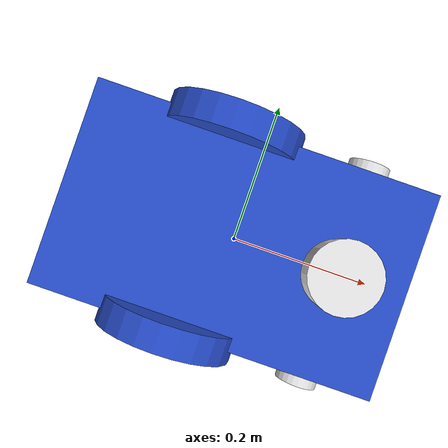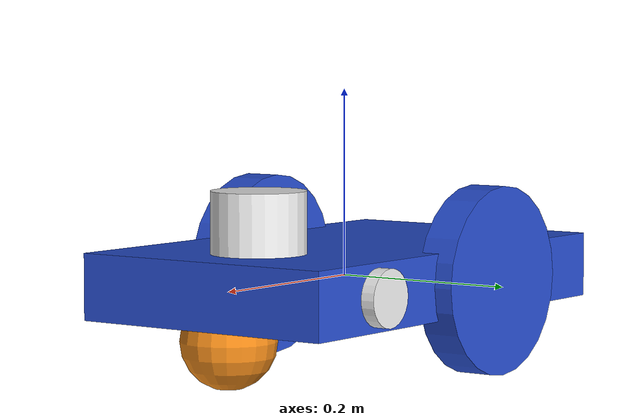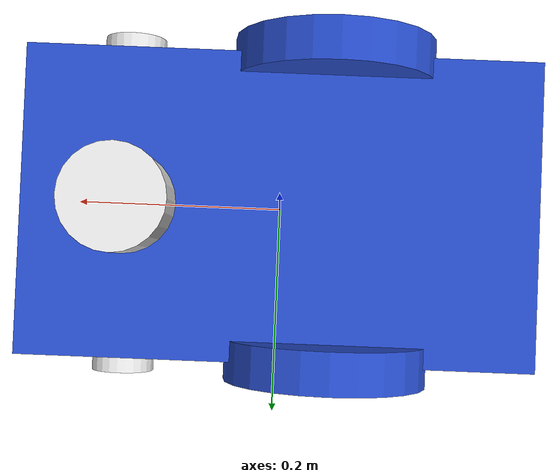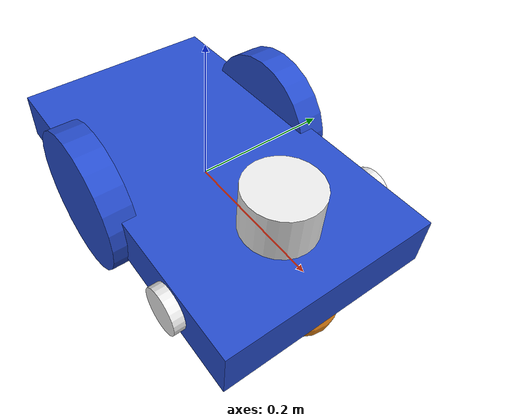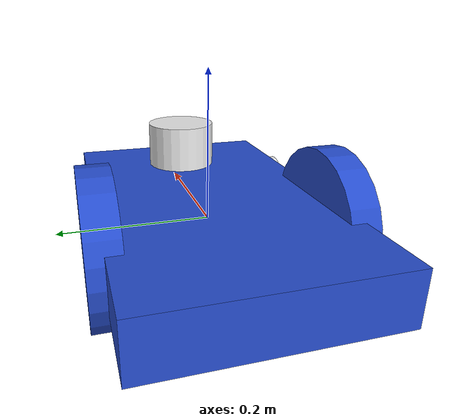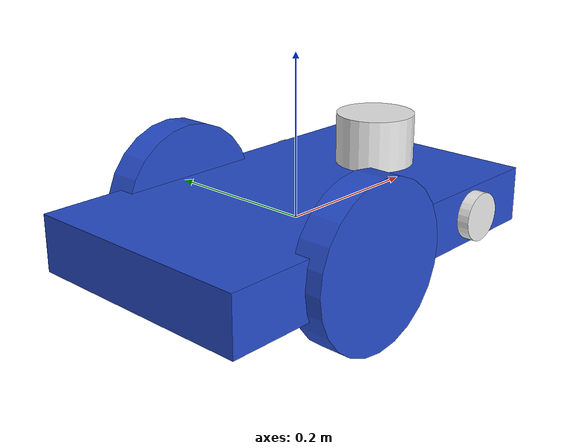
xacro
<?xml version="1.0" ?>
<robot name="m2wr" xmlns:xacro="http://www.ros.org/wiki/xacro">

  <xacro:include filename="$(find m2wr_description)/urdf/materials.xacro" />
  <xacro:include filename="$(find m2wr_description)/urdf/m2wr.gazebo" />
  <xacro:include filename="$(find m2wr_description)/urdf/macros.xacro" />

  <link name="link_chassis">
    <!-- pose and inertial -->
    <pose>0 0 0.1 0 0 0</pose>
    <inertial>
      <mass value="5"/>
      <origin rpy="0 0 0" xyz="0 0 0.1"/>
      <inertia ixx="0.0395416666667" ixy="0" ixz="0" iyy="0.106208333333" iyz="0" izz="0.106208333333"/>
    </inertial>
    <!-- body -->
    <collision name="collision_chassis">
      <geometry>
        <box size="0.5 0.3 0.07"/>
      </geometry>
    </collision>
    <visual>
      <origin rpy="0 0 0" xyz="0 0 0"/>
      <geometry>
        <box size="0.5 0.3 0.07"/>
      </geometry>
      <material name="blue"/>
    </visual>
    <!-- caster front -->
    <collision name="caster_front_collision">
      <origin rpy=" 0 0 0" xyz="0.35 0 -0.05"/>
      <geometry>
        <sphere radius="0.05"/>
      </geometry>
      <surface>
        <friction>
          <ode>
            <mu>0</mu>
            <mu2>0</mu2>
            <slip1>1.0</slip1>
            <slip2>1.0</slip2>
          </ode>
        </friction>
      </surface>
    </collision>
    <visual name="caster_front_visual">
      <origin rpy=" 0 0 0" xyz="0.2 0 -0.05"/>
      <geometry>
        <sphere radius="0.05"/>
      </geometry>
    </visual>
  </link>

  <link name="front_sensor_laser">
    <inertial>
        <origin xyz="0 0 0" rpy="0 0 0" />
        <mass value="1" />
        <xacro:cylinder_inertia mass="1" r="0.05" l="0.1" />
    </inertial>

    <visual>
        <origin xyz="0 0 0" rpy="0 0 0" />
        <geometry>
        <cylinder radius="0.05" length="0.1"/>
        </geometry>
        <material name="white" />
    </visual>

    <collision>
        <origin xyz="0 0 0" rpy="0 0 0"/>
        <geometry>
        <cylinder radius="0.05" length="0.1"/>
        </geometry>
    </collision>
    </link>

  <link name="right_sensor_laser">
    <inertial>
        <origin xyz="0 0 0" rpy="0 1.5707 1.5707" />
        <mass value="1" />
        <xacro:cylinder_inertia mass="1" r="0.03" l="0.05" />
    </inertial>

    <visual>
        <origin xyz="0 0 0" rpy="0 1.5707 1.5707" />
        <geometry>
        <cylinder radius="0.03" length="0.05"/>
        </geometry>
        <material name="white" />
    </visual>

    <collision>
        <origin xyz="0 0 0" rpy="0 1.5707 1.5707"/>
        <geometry>
        <cylinder radius="0.03" length="0.05"/>
        </geometry>
    </collision>
    </link>

  <link name="left_sensor_laser">
    <inertial>
        <origin xyz="0 0 0" rpy="0 1.5707 1.5707" />
        <mass value="1" />
        <xacro:cylinder_inertia mass="1" r="0.03" l="0.05" />
    </inertial>

    <visual>
        <origin xyz="0 0 0" rpy="0 1.5707 1.5707" />
        <geometry>
        <cylinder radius="0.03" length="0.05"/>
        </geometry>
        <material name="white" />
    </visual>

    <collision>
        <origin xyz="0 0 0" rpy="0 1.5707 1.5707"/>
        <geometry>
        <cylinder radius="0.03" length="0.05"/>
        </geometry>
    </collision>
    </link>

    <joint name="joint_fsensor_laser" type="fixed">
    <origin xyz="0.15 0 0.05" rpy="0 0 0"/>
    <parent link="link_chassis"/>
    <child link="front_sensor_laser"/>
  </joint>

    <joint name="joint_rsensor_laser" type="fixed">
    <origin xyz="0.15 -0.14 0" rpy="0 0 0"/>
    <parent link="link_chassis"/>
    <child link="right_sensor_laser"/>
  </joint>

    <joint name="joint_lsensor_laser" type="fixed">
    <origin xyz="0.15 0.14 0" rpy="0 0 0"/>
    <parent link="link_chassis"/>
    <child link="left_sensor_laser"/>
  </joint>

  <xacro:link_wheel name="link_right_wheel" />
  <xacro:joint_wheel name="joint_right_wheel" child="link_right_wheel" origin_xyz="-0.05 0.15 0" />

  <xacro:link_wheel name="link_left_wheel" />
  <xacro:joint_wheel name="joint_left_wheel" child="link_left_wheel" origin_xyz="-0.05 -0.15 0" />
</robot>

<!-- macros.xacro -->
<robot>
    <macro name="link_wheel" params="name">
        <link name="${name}">
            <inertial>
              <mass value="0.2"/>
              <origin rpy="0 1.5707 1.5707" xyz="0 0 0"/>
              <inertia ixx="0.000526666666667" ixy="0" ixz="0" iyy="0.000526666666667" iyz="0" izz="0.001"/>
            </inertial>
            <collision name="link_right_wheel_collision">
              <origin rpy="0 1.5707 1.5707" xyz="0 0 0"/>
              <geometry>
                <cylinder length="0.04" radius="0.1"/>
              </geometry>
            </collision>
            <visual name="${name}_visual">
              <origin rpy="0 1.5707 1.5707" xyz="0 0 0"/>
              <geometry>
                <cylinder length="0.04" radius="0.1"/>
              </geometry>
            </visual>
        </link>
    </macro>

    <macro name="joint_wheel" params="name child origin_xyz">
      <joint name="${name}" type="continuous">
        <origin rpy="0 0 0" xyz="${origin_xyz}"/>
        <child link="${child}"/>
        <parent link="link_chassis"/>
        <axis rpy="0 0 0" xyz="0 1 0"/>
        <limit effort="10000" velocity="1000"/>
        <joint_properties damping="1.0" friction="1.0"/>
      </joint>
    </macro>

<macro name="cylinder_inertia" params="mass r l">
  <inertia  ixx="${mass*(3*r*r+l*l)/12}" ixy = "0" ixz = "0"
            iyy="${mass*(3*r*r+l*l)/12}" iyz = "0"
            izz="${mass*(r*r)/2}" />
</macro>

</robot>
